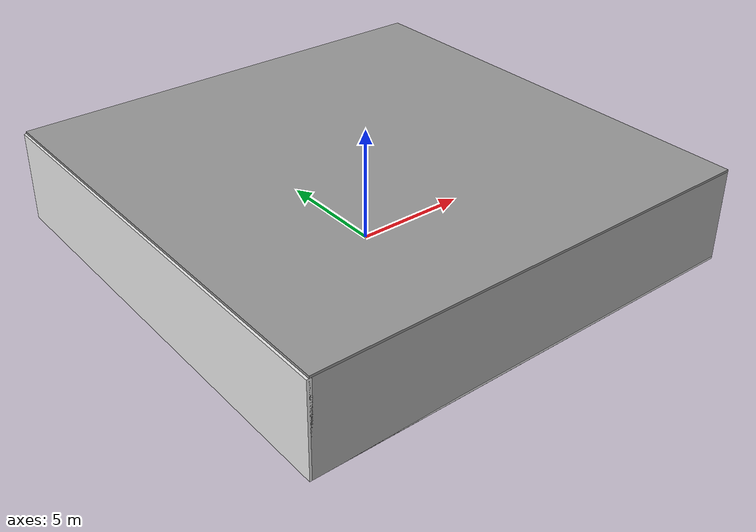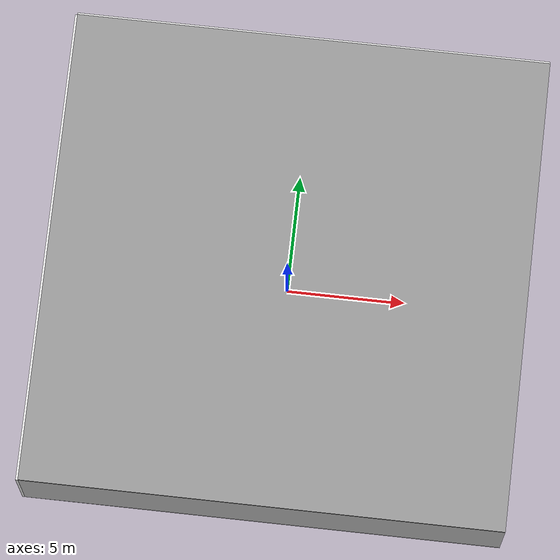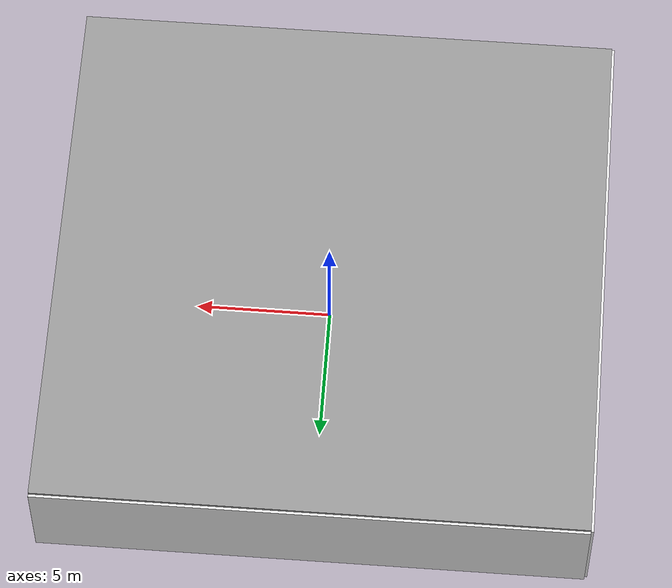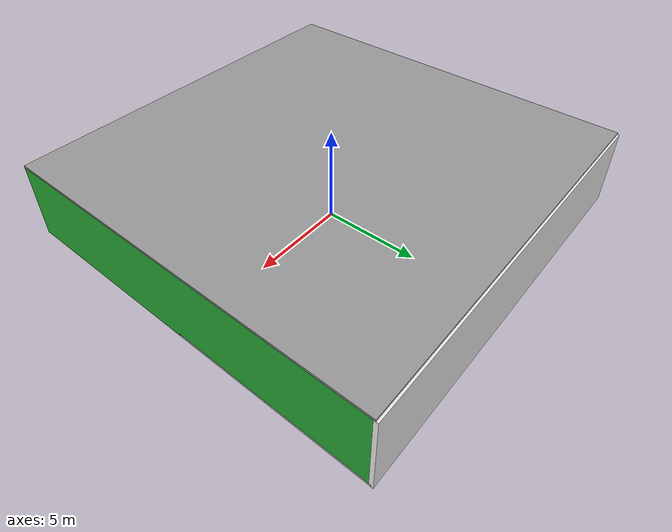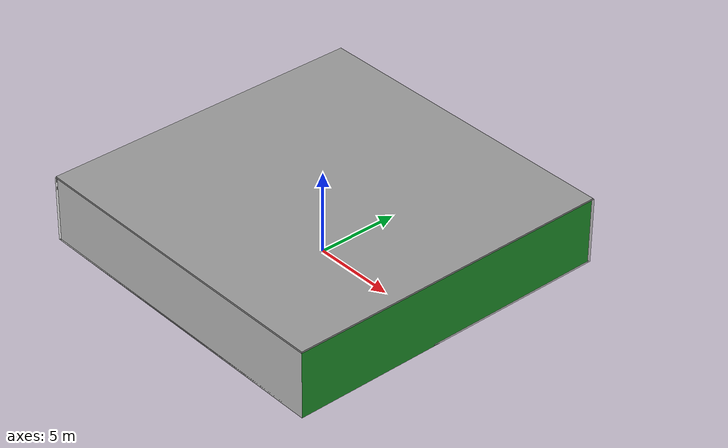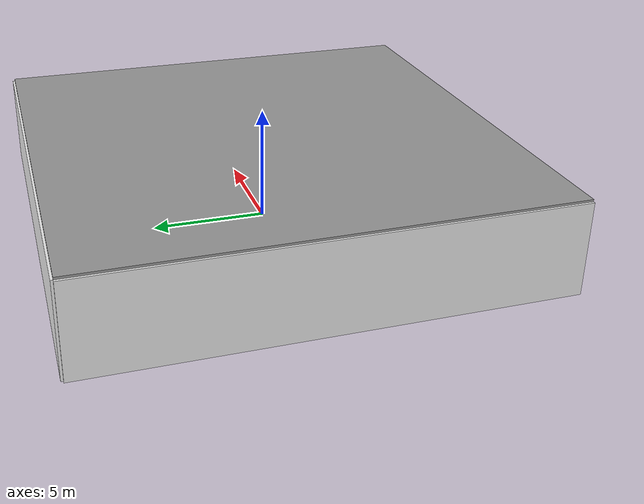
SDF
<sdf version="1.4">
 <world name="default">
  <physics type="ode">
   <max_step_size>0.001</max_step_size>
   <real_time_factor>1</real_time_factor>
   <real_time_update_rate>1000</real_time_update_rate>
   <gravity>0 0 -9.8</gravity>
  </physics>
  <scene><ambient>0.4 0.4 0.4 1</ambient><background>0.7 0.7 0.7 1</background><shadows>1</shadows></scene>
  <model name="Surrounding">
   <static>1</static>
   <link name="Ceiling">
    <collision name="Ceiling_Collision"><geometry><box><size>20 20 0.1</size></box></geometry></collision>
    <visual name="Ceiling_Visual">
     <geometry><box><size>20 20 0.1</size></box></geometry>
     <material>
      <script><uri>file://media/materials/scripts/gazebo.material</uri><name>Gazebo/GreyGradientSky</name></script>
     </material>
    </visual>
    <pose>0 0 4.05 0 0 0</pose>
   </link>
   <link name="Wall_South">
    <collision name="Wall_South_Collision">
     <geometry><box><size>20 0 4</size></box></geometry>
     <pose>0 0 2 0 -0 0</pose>
    </collision>
    <visual name="Wall_South_Visual">
     <pose>0 0 2 0 -0 0</pose>
     <geometry><box><size>20 0 4</size></box></geometry>
     <material>
      <script><uri>file://media/materials/scripts/gazebo.material</uri><name>Gazebo/LightOn</name></script>
     </material>
    </visual>
    <velocity_decay><linear>0</linear><angular>0</angular></velocity_decay>
    <pose>0 -10 0 0 -0 0</pose>
   </link>
   <link name="Wall_East">
    <collision name="Wall_21_Collision">
     <geometry><box><size>20 0 4</size></box></geometry>
     <pose>0 0 2 0 -0 0</pose>
    </collision>
    <visual name="Wall_21_Visual">
     <pose>0 0 2 0 -0 0</pose>
     <geometry><box><size>20 0 4</size></box></geometry>
     <material>
      <script><uri>file://media/materials/scripts/gazebo.material</uri><name>Gazebo/Green</name></script>
     </material>
    </visual>
    <velocity_decay><linear>0</linear><angular>0</angular></velocity_decay>
    <pose>10 0 0 0 -0 1.5708</pose>
   </link>
   <link name="Wall_North">
    <collision name="Wall_22_Collision">
     <geometry><box><size>20 0.2 4</size></box></geometry>
     <pose>0 0 2 0 -0 0</pose>
    </collision>
    <visual name="Wall_22_Visual">
     <pose>0 0 2 0 -0 0</pose>
     <geometry><box><size>20 0.2 4</size></box></geometry>
     <material>
      <script><uri>file://media/materials/scripts/gazebo.material</uri><name>Gazebo/White</name></script>
     </material>
    </visual>
    <velocity_decay><linear>0</linear><angular>0</angular></velocity_decay>
    <pose>0 10 0 0 -0 0</pose>
   </link>
   <link name="Wall_West">
    <collision name="Wall_23_Collision">
     <geometry><box><size>20 0.2 4</size></box></geometry>
     <pose>0 0 2 0 -0 0</pose>
    </collision>
    <visual name="Wall_23_Visual">
     <pose>0 0 2 0 -0 0</pose>
     <geometry><box><size>20 0.2 4</size></box></geometry>
     <material>
      <script><uri>file://media/materials/scripts/gazebo.material</uri><name>Gazebo/White</name></script>
     </material>
    </visual>
    <velocity_decay><linear>0</linear><angular>0</angular></velocity_decay>
    <pose>-10 0 0 0 0 -1.5708</pose>
   </link>
   <link name="Ground_link">
    <collision name="collision">
     <pose>0 0 .05 0 -0 0</pose>
     <geometry><box><size>20 20 0.1</size></box></geometry>
    </collision>
    <visual name="visual">
     <pose>0 0 .05 0 -0 0</pose>
     <geometry><box><size>20 20 0.1</size></box></geometry>
     <material>
      <script><uri>file://media/materials/scripts/gazebo.material</uri><name>Gazebo/White</name></script>
     </material>
    </visual>
   </link>
   <static>1</static>
  </model>
  <spherical_coordinates>
   <surface_model>EARTH_WGS84</surface_model>
   <latitude_deg>0</latitude_deg>
   <longitude_deg>0</longitude_deg>
   <elevation>0</elevation>
   <heading_deg>0</heading_deg>
  </spherical_coordinates>
  <light name="lightball_0" type="diffuse">
   <diffuse>0.8 0.8 0.8 1</diffuse>
   <specular>0.2 0.2 0.2 1</specular>
   <attenuation>
    <range>100</range>
    <constant>0.7</constant>
    <linear>0.01</linear>
    <quadratic>0.001</quadratic>
   </attenuation>
   <direction>-0.5 0.1 -0.9</direction>
   <pose>7.6714672433 7.07309258575 3.71777807247 0 0 0</pose>
  </light>
  <light name="lightball_1" type="diffuse">
   <diffuse>0.8 0.8 0.8 1</diffuse>
   <specular>0.2 0.2 0.2 1</specular>
   <attenuation>
    <range>100</range>
    <constant>0.7</constant>
    <linear>0.01</linear>
    <quadratic>0.001</quadratic>
   </attenuation>
   <direction>-0.5 0.1 -0.9</direction>
   <pose>1.77870351533 4.14314551811 2.64394007208 0 0 0</pose>
  </light>
  <light name="lightball_2" type="diffuse">
   <diffuse>0.8 0.8 0.8 1</diffuse>
   <specular>0.2 0.2 0.2 1</specular>
   <attenuation>
    <range>100</range>
    <constant>0.7</constant>
    <linear>0.01</linear>
    <quadratic>0.001</quadratic>
   </attenuation>
   <direction>-0.5 0.1 -0.9</direction>
   <pose>-7.8648846394 6.54462301916 1.21026752519 0 0 0</pose>
  </light>
  <light name="lightball_3" type="diffuse">
   <diffuse>0.8 0.8 0.8 1</diffuse>
   <specular>0.2 0.2 0.2 1</specular>
   <attenuation>
    <range>100</range>
    <constant>0.7</constant>
    <linear>0.01</linear>
    <quadratic>0.001</quadratic>
   </attenuation>
   <direction>-0.5 0.1 -0.9</direction>
   <pose>4.42808594943 -8.193561157 3.32582022322 0 0 0</pose>
  </light>
  <light name="lightball_4" type="diffuse">
   <diffuse>0.8 0.8 0.8 1</diffuse>
   <specular>0.2 0.2 0.2 1</specular>
   <attenuation>
    <range>100</range>
    <constant>0.7</constant>
    <linear>0.01</linear>
    <quadratic>0.001</quadratic>
   </attenuation>
   <direction>-0.5 0.1 -0.9</direction>
   <pose>-8.81853451274 -7.21086367514 1.44176985854 0 0 0</pose>
  </light>
  <light name="lightball_5" type="diffuse">
   <diffuse>0.8 0.8 0.8 1</diffuse>
   <specular>0.2 0.2 0.2 1</specular>
   <attenuation>
    <range>100</range>
    <constant>0.7</constant>
    <linear>0.01</linear>
    <quadratic>0.001</quadratic>
   </attenuation>
   <direction>-0.5 0.1 -0.9</direction>
   <pose>-5.37696985184 6.99168340434 1.32952323225 0 0 0</pose>
  </light>
  <light name="lightball_6" type="diffuse">
   <diffuse>0.8 0.8 0.8 1</diffuse>
   <specular>0.2 0.2 0.2 1</specular>
   <attenuation>
    <range>100</range>
    <constant>0.7</constant>
    <linear>0.01</linear>
    <quadratic>0.001</quadratic>
   </attenuation>
   <direction>-0.5 0.1 -0.9</direction>
   <pose>-6.2703721666 8.43534011303 0.597823313029 0 0 0</pose>
  </light>
  <light name="lightball_7" type="diffuse">
   <diffuse>0.8 0.8 0.8 1</diffuse>
   <specular>0.2 0.2 0.2 1</specular>
   <attenuation>
    <range>100</range>
    <constant>0.7</constant>
    <linear>0.01</linear>
    <quadratic>0.001</quadratic>
   </attenuation>
   <direction>-0.5 0.1 -0.9</direction>
   <pose>3.34275228889 -9.17354589875 2.38321284343 0 0 0</pose>
  </light>
  <light name="lightball_8" type="diffuse">
   <diffuse>0.8 0.8 0.8 1</diffuse>
   <specular>0.2 0.2 0.2 1</specular>
   <attenuation>
    <range>100</range>
    <constant>0.7</constant>
    <linear>0.01</linear>
    <quadratic>0.001</quadratic>
   </attenuation>
   <direction>-0.5 0.1 -0.9</direction>
   <pose>8.89034189599 1.68043082122 2.61244542272 0 0 0</pose>
  </light>
  <light name="lightball_9" type="diffuse">
   <diffuse>0.8 0.8 0.8 1</diffuse>
   <specular>0.2 0.2 0.2 1</specular>
   <attenuation>
    <range>100</range>
    <constant>0.7</constant>
    <linear>0.01</linear>
    <quadratic>0.001</quadratic>
   </attenuation>
   <direction>-0.5 0.1 -0.9</direction>
   <pose>5.87736514766 6.23623272975 2.62947708247 0 0 0</pose>
  </light>
  <light name="lightball_10" type="diffuse">
   <diffuse>0.8 0.8 0.8 1</diffuse>
   <specular>0.2 0.2 0.2 1</specular>
   <attenuation>
    <range>100</range>
    <constant>0.7</constant>
    <linear>0.01</linear>
    <quadratic>0.001</quadratic>
   </attenuation>
   <direction>-0.5 0.1 -0.9</direction>
   <pose>-1.04650039288 7.62877480352 1.94883522611 0 0 0</pose>
  </light>
  <include><uri>model://cabinet</uri><pose>-7.9579749274 -8.41506363625 0 0 0 3.10023484342</pose></include>
  <include>
   <uri>model://construction_cone</uri>
   <pose>-8.30643547682 -2.69456166027 0 0 0 1.87363054865</pose>
  </include>
  <include><uri>model://cabinet</uri><pose>-2.20831788699 6.46793765023 0 0 0 3.12674820975</pose></include>
  <include>
   <uri>model://construction_cone</uri>
   <pose>3.70550163197 -4.33146667444 0 0 0 3.03160488488</pose>
  </include>
  <include>
   <uri>model://robocup_3Dsim_goal</uri>
   <pose>4.13416731327 7.33429188736 0 0 0 2.68644027782</pose>
  </include>
 </world>
</sdf>

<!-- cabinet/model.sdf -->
<sdf version="1.5">
  <model name="cabinet">
    <static>true</static>
    <link name="cabinet_bottom_plate">
      <inertial>
        <pose>0 0 -1 0 0 0</pose>
        <inertia>
          <ixx>2.050000</ixx>
          <ixy>0</ixy>
          <ixz>0</ixz>
          <iyy>2.050000</iyy>
          <iyz>0</iyz>
          <izz>2.050000</izz>
        </inertia>
        <mass>25.000000</mass>
      </inertial>
      <collision name="cabinet_bottom_plate_geom">
        <pose>0 0 0.010000 0 0 0</pose>
        <geometry>
          <box>
            <size>0.450000 0.450000 0.020000</size>
          </box>
        </geometry>
      </collision>
      <visual name="cabinet_bottom_plate_geom_visual">
        <pose>0 0 0.010000 0 0 0</pose>
        <geometry>
          <box>
            <size>0.450000 0.450000 0.020000</size>
          </box>
        </geometry>
        <material>
          <script>
            <uri>model://media/materials/scripts/gazebo.material</uri>
            <name>Gazebo/Wood</name>
          </script>
        </material>
      </visual>
      <collision name="cabinet_bottom_plate_geom_cabinet_back_plate">
        <pose>0.235000 0 0.510000 0 0 0</pose>
        <geometry>
          <box>
            <size>0.020000 0.450000 1.020000</size>
          </box>
        </geometry>
      </collision>
      <visual name="cabinet_bottom_plate_geom_cabinet_back_plate_visual">
        <pose>0.235000 0 0.510000 0 0 0</pose>
        <geometry>
          <box>
            <size>0.020000 0.450000 1.020000</size>
          </box>
        </geometry>
        <material>
          <script>
            <uri>model://media/materials/scripts/gazebo.material</uri>
            <name>Gazebo/Wood</name>
          </script>
        </material>
      </visual>
      <collision name="cabinet_bottom_plate_geom_cabinet_left_plate">
        <pose>0 0.235000 0.510000 0 0 0</pose>
        <geometry>
          <box>
            <size>0.450000 0.020000 1.020000</size>
          </box>
        </geometry>
      </collision>
      <visual name="cabinet_bottom_plate_geom_cabinet_left_plate_visual">
        <pose>0 0.235000 0.510000 0 0 0</pose>
        <geometry>
          <box>
            <size>0.450000 0.020000 1.020000</size>
          </box>
        </geometry>
        <material>
          <script>
            <uri>model://media/materials/scripts/gazebo.material</uri>
            <name>Gazebo/Wood</name>
          </script>
        </material>
      </visual>
      <collision name="cabinet_bottom_plate_geom_cabinet_middle_plate">
        <pose>0 0 0.510000 0 0 0</pose>
        <geometry>
          <box>
            <size>0.450000 0.450000 0.020000</size>
          </box>
        </geometry>
      </collision>
      <visual name="cabinet_bottom_plate_geom_cabinet_middle_plate_visual">
        <pose>0 0 0.510000 0 0 0</pose>
        <geometry>
          <box>
            <size>0.450000 0.450000 0.020000</size>
          </box>
        </geometry>
        <material>
          <script>
            <uri>model://media/materials/scripts/gazebo.material</uri>
            <name>Gazebo/Wood</name>
          </script>
        </material>
      </visual>
      <collision name="cabinet_bottom_plate_geom_cabinet_right_plate">
        <pose>0 -0.235000 0.510000 0 0 0</pose>
        <geometry>
          <box>
            <size>0.450000 0.020000 1.020000</size>
          </box>
        </geometry>
      </collision>
      <visual name="cabinet_bottom_plate_geom_cabinet_right_plate_visual">
        <pose>0 -0.235000 0.510000 0 0 0</pose>
        <geometry>
          <box>
            <size>0.450000 0.020000 1.020000</size>
          </box>
        </geometry>
        <material>
          <script>
            <uri>model://media/materials/scripts/gazebo.material</uri>
            <name>Gazebo/Wood</name>
          </script>
        </material>
      </visual>
      <collision name="cabinet_bottom_plate_geom_cabinet_top_plate">
        <pose>0 0 1.010000 0 0 0</pose>
        <geometry>
          <box>
            <size>0.450000 0.450000 0.020000</size>
          </box>
        </geometry>
      </collision>
      <visual name="cabinet_bottom_plate_geom_cabinet_top_plate_visual">
        <pose>0 0 1.010000 0 0 0</pose>
        <geometry>
          <box>
            <size>0.450000 0.450000 0.020000</size>
          </box>
        </geometry>
        <material>
          <script>
            <uri>model://media/materials/scripts/gazebo.material</uri>
            <name>Gazebo/Wood</name>
          </script>
        </material>
      </visual>
    </link>
  </model>
</sdf>

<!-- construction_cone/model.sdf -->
<sdf version="1.5">
  <model name="Construction Cone">
    <link name="link">
      <collision name="collision">
        <geometry>
          <mesh>
            <scale>10 10 10</scale>
            <uri>file://isr-testbed/construction_cone/meshes/construction_cone.dae</uri>
          </mesh>
        </geometry>
      </collision>
      <visual name="visual">
        <geometry>
          <mesh>
            <scale>10 10 10</scale>
            <uri>file://isr-testbed/construction_cone/meshes/construction_cone.dae</uri>
          </mesh>
        </geometry>
      </visual>
    </link>
  </model>
</sdf>

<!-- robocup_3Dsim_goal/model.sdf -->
<sdf version="1.5">
  <model name="robocup_3d_goal">
    <static>true</static>
    <link name="left_post">
      <pose>0 1.05 0.45 0 0 0</pose>
      <collision name="collision">
        <geometry>
          <cylinder>
            <radius>0.05</radius>
            <length>0.9</length>
          </cylinder>
        </geometry>
      </collision>
      <visual name="visual">
        <geometry>
          <cylinder>
            <radius>0.05</radius>
            <length>0.9</length>
          </cylinder>
        </geometry>
        <material>
          <script>
            <uri>file://media/materials/scripts/gazebo.material</uri>
            <name>Gazebo/ZincYellow</name>
          </script>
        </material>
      </visual>
    </link>
    <link name="left_support_horiz_lower">
      <pose>0.30 1.05 0.01 0 0 0</pose>
      <collision name="collision">
        <geometry>
          <box>
            <size>0.50 0.02 0.02</size>
          </box>
        </geometry>
      </collision>
      <visual name="visual">
        <geometry>
          <box>
            <size>0.50 0.02 0.02</size>
          </box>
        </geometry>
        <material>
          <script>
            <uri>file://media/materials/scripts/gazebo.material</uri>
            <name>Gazebo/White</name>
          </script>
        </material>
      </visual>
    </link>
    <link name="left_support_horiz_upper">
      <pose>0.30 1.05 0.79 0 0 0</pose>
      <collision name="collision">
        <geometry>
          <box>
            <size>0.50 0.02 0.02</size>
          </box>
        </geometry>
      </collision>
      <visual name="visual">
        <geometry>
          <box>
            <size>0.50 0.02 0.02</size>
          </box>
        </geometry>
        <material>
          <script>
            <uri>file://media/materials/scripts/gazebo.material</uri>
            <name>Gazebo/White</name>
          </script>
        </material>
      </visual>
    </link>
    <link name="left_support_vertical">
      <pose>0.56 1.05 0.4 0 1.5708 0</pose>
      <collision name="collision">
        <geometry>
          <box>
            <size>0.80 0.02 0.02</size>
          </box>
        </geometry>
      </collision>
      <visual name="visual">
        <geometry>
          <box>
            <size>0.80 0.02 0.02</size>
          </box>
        </geometry>
        <material>
          <script>
            <uri>file://media/materials/scripts/gazebo.material</uri>
            <name>Gazebo/White</name>
          </script>
        </material>
      </visual>
    </link>
    <link name="right_support_horiz_lower">
      <pose>0.30 -1.05 0.01 0 0 0</pose>
      <collision name="collision">
        <geometry>
          <box>
            <size>0.50 0.02 0.02</size>
          </box>
        </geometry>
      </collision>
      <visual name="visual">
        <geometry>
          <box>
            <size>0.50 0.02 0.02</size>
          </box>
        </geometry>
        <material>
          <script>
            <uri>file://media/materials/scripts/gazebo.material</uri>
            <name>Gazebo/White</name>
          </script>
        </material>
      </visual>
    </link>
    <link name="right_support_horiz_upper">
      <pose>0.30 -1.05 0.79 0 0 0</pose>
      <collision name="collision">
        <geometry>
          <box>
            <size>0.50 0.02 0.02</size>
          </box>
        </geometry>
      </collision>
      <visual name="visual">
        <geometry>
          <box>
            <size>0.50 0.02 0.02</size>
          </box>
        </geometry>
        <material>
          <script>
            <uri>file://media/materials/scripts/gazebo.material</uri>
            <name>Gazebo/White</name>
          </script>
        </material>
      </visual>
    </link>
    <link name="right_support_vertical">
      <pose>0.56 -1.05 0.4 0 1.5708 0</pose>
      <collision name="collision">
        <geometry>
          <box>
            <size>0.80 0.02 0.02</size>
          </box>
        </geometry>
      </collision>
      <visual name="visual">
        <geometry>
          <box>
            <size>0.80 0.02 0.02</size>
          </box>
        </geometry>
        <material>
          <script>
            <uri>file://media/materials/scripts/gazebo.material</uri>
            <name>Gazebo/White</name>
          </script>
        </material>
      </visual>
    </link>
    <link name="center_support_horiz_lower">
      <pose>0.56 0 0.01 0 1.5708 0</pose>
      <collision name="collision">
        <geometry>
          <box>
            <size>0.02 2.08 0.02</size>
          </box>
        </geometry>
      </collision>
      <visual name="visual">
        <geometry>
          <box>
            <size>0.02 2.08 0.02</size>
          </box>
        </geometry>
        <material>
          <script>
            <uri>file://media/materials/scripts/gazebo.material</uri>
            <name>Gazebo/White</name>
          </script>
        </material>
      </visual>
    </link>
    <link name="center_support_horiz_upper">
      <pose>0.56 0 0.79 0 1.5708 0</pose>
      <collision name="collision">
        <geometry>
          <box>
            <size>0.02 2.08 0.02</size>
          </box>
        </geometry>
      </collision>
      <visual name="visual">
        <geometry>
          <box>
            <size>0.02 2.08 0.02</size>
          </box>
        </geometry>
        <material>
          <script>
            <uri>file://media/materials/scripts/gazebo.material</uri>
            <name>Gazebo/White</name>
          </script>
        </material>
      </visual>
    </link>
    <link name="right_post">
      <pose>0 -1.05 0.45 0 0 0</pose>
      <collision name="collision">
        <geometry>
          <cylinder>
            <radius>0.05</radius>
            <length>0.9</length>
          </cylinder>
        </geometry>
      </collision>
      <visual name="visual">
        <geometry>
          <cylinder>
            <radius>0.05</radius>
            <length>0.9</length>
          </cylinder>
        </geometry>
        <material>
          <script>
            <uri>file://media/materials/scripts/gazebo.material</uri>
            <name>Gazebo/ZincYellow</name>
          </script>
        </material>
      </visual>
    </link>
    <link name="crossbar">
      <pose>0 0 0.85 1.57 1.57 0</pose>
      <collision name="collision">
        <geometry>
          <cylinder>
            <radius>0.05</radius>
            <length>2.0</length>
          </cylinder>
        </geometry>
      </collision>
      <visual name="visual">
        <geometry>
          <cylinder>
            <radius>0.05</radius>
            <length>2.0</length>
          </cylinder>
        </geometry>
        <material>
          <script>
            <uri>file://media/materials/scripts/gazebo.material</uri>
            <name>Gazebo/ZincYellow</name>
          </script>
        </material>
      </visual>
    </link>
    <link name="center_net">
      <pose>0.56 0 0.40 0 0 0</pose>
      <collision name="collision">
        <geometry>
          <box>
            <size>0.01 2.1 0.80</size>
          </box>
        </geometry>
      </collision>
      <visual name="visual">
        <geometry>
          <box>
            <size>0.01 2.1 0.80</size>
          </box>
        </geometry>
        <material>
          <script>
            <uri>model://../model_source/models/robocup09_spl_field/materials/scripts/</uri>
            <uri>model://../model_source/models/robocup09_spl_field/materials/textures/</uri>
            <name>RoboCup/Net</name>
          </script>
        </material>
      </visual>
    </link>
    <link name="left_net">
      <pose>0.30 1.05 0.40 0 0 0</pose>
      <collision name="collision">
        <geometry>
          <box>
            <size>0.50 0.01 0.76</size>
          </box>
        </geometry>
      </collision>
      <visual name="visual">
        <geometry>
          <box>
            <size>0.50 0.01 0.76</size>
          </box>
        </geometry>
        <material>
          <script>
            <uri>model://../model_source/models/robocup09_spl_field/materials/scripts/</uri>
            <uri>model://../model_source/models/robocup09_spl_field/materials/textures/</uri>
            <name>RoboCup/Net</name>
          </script>
        </material>
      </visual>
    </link>
    <link name="right_net">
      <pose>0.30 -1.05 0.40 0 0 0</pose>
      <collision name="collision">
        <geometry>
          <box>
            <size>0.50 0.01 0.76</size>
          </box>
        </geometry>
      </collision>
      <visual name="visual">
        <geometry>
          <box>
            <size>0.50 0.01 0.76</size>
          </box>
        </geometry>
        <material>
          <script>
            <uri>model://../model_source/models/robocup09_spl_field/materials/scripts/</uri>
            <uri>model://../model_source/models/robocup09_spl_field/materials/textures/</uri>
            <name>RoboCup/Net</name>
          </script>
        </material>
      </visual>
    </link>
  </model>
</sdf>
